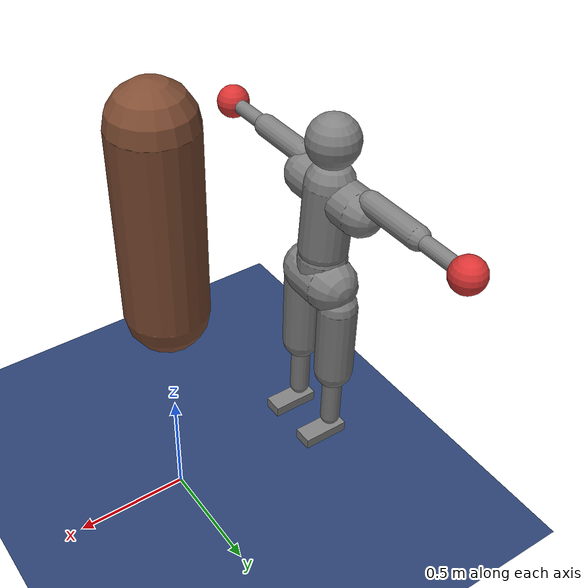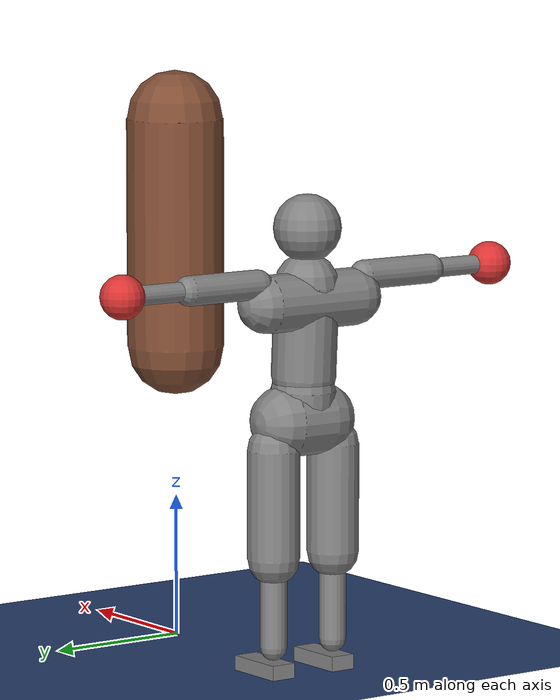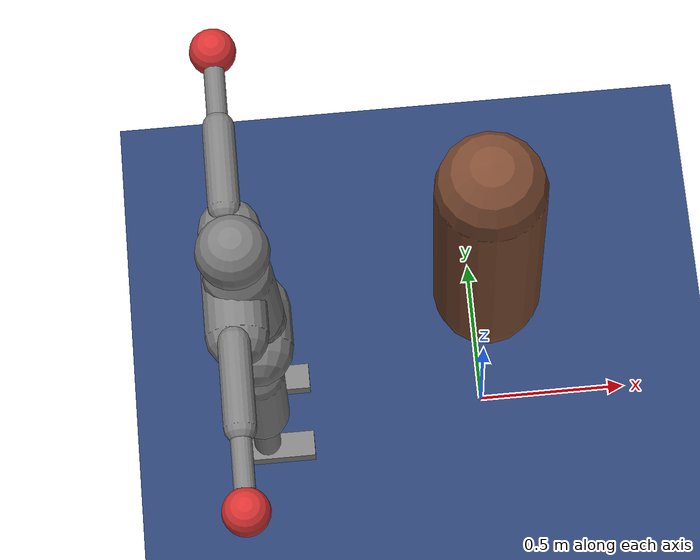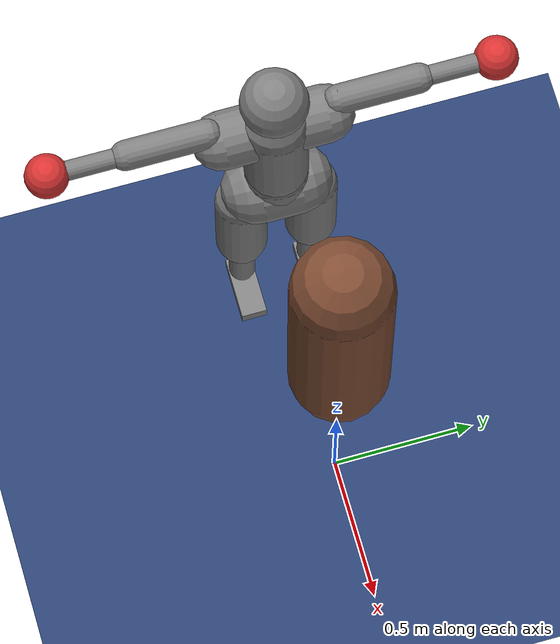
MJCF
<mujoco model="lilmatt_bag">
  <compiler angle="degree" inertiafromgeom="true" autolimits="true"/>
  <option timestep="0.005" iterations="10" ls_iterations="10" integrator="implicitfast">
    <flag eulerdamp="disable"/>
  </option>
  <default>
    <geom contype="1" conaffinity="1" condim="3" friction="1.0 0.005 0.0001" density="1000" margin="0"/>
    <joint limited="true"/>
    <position ctrllimited="true"/>
  </default>
  <asset>
    <texture name="grid" type="2d" builtin="checker" rgb1=".18 .28 .48" rgb2=".14 .22 .40" width="300" height="300"/>
    <material name="grid" texture="grid" texrepeat="6 6" reflectance="0"/>
  </asset>
  <worldbody>
    <light pos="0 0 5" dir="0 0 -1" directional="true"/>
    <geom name="floor" type="plane" size="0 0 0.05" material="grid" friction="1.0 0.005 0.0001"/>

    <body name="a_pelvis" pos="-0.7500 0.0000 0.8672" quat="1.00000 0 0 0.00000">
      <freejoint name="a_root"/>
      <geom name="a_pelvis_geom" type="capsule" fromto="0.0000 -0.0700 0.0000 0.0000 0.0700 0.0000" size="0.1228" mass="6.8132" />
      <geom name="a_pelvis_up" type="capsule" fromto="0.0000 0.0000 0.0000 -0.0066 0.0000 0.1058" size="0.1105" mass="4.6036" />
      <body name="a_torso" pos="-0.0066 0.0000 0.1258">
        <joint name="a_abdomen_z" type="hinge" axis="0 0 1" range="-45 45" damping="0.5" armature="0.08" stiffness="0"/>
        <joint name="a_abdomen_y" type="hinge" axis="0 1 0" range="-60 30" damping="0.5" armature="0.08" stiffness="0"/>
        <joint name="a_abdomen_x" type="hinge" axis="1 0 0" range="-35 35" damping="0.5" armature="0.08" stiffness="0"/>
        <geom name="a_torso_geom" type="capsule" fromto="0.0000 0.0000 0.0200 -0.0181 0.0000 0.3354" size="0.1100" mass="28.5420" />
        <geom name="a_chest_geom" type="capsule" fromto="-0.0347 -0.1786 0.2850 -0.0347 0.1786 0.2850" size="0.0990" mass="0.5"/>
        <geom name="a_head_geom" type="sphere" pos="-0.0217 0.0000 0.5289" size="0.1155" mass="6.5124" />
        <body name="a_upper_arm_l" pos="-0.0434 0.2232 0.3563">
          <joint name="a_shoulder_x_l" type="hinge" axis="1 0 0" range="-170 30" damping="0.5" armature="0.03" stiffness="0"/>
          <joint name="a_shoulder_z_l" type="hinge" axis="0 0 1" range="-110 110" damping="0.5" armature="0.03" stiffness="0"/>
          <geom name="a_upper_arm_l_geom" type="capsule" fromto="0.0000 0.0000 0.0000 0.0000 0.2758 0.0000" size="0.0508" mass="2.2512" />
          <body name="a_forearm_l" pos="0.0000 0.2758 0.0000">
            <joint name="a_elbow_l" type="hinge" axis="0 0 1" range="-150 0" damping="0.5" armature="0.02" stiffness="0"/>
            <geom name="a_forearm_l_geom" type="capsule" fromto="0.0000 0.0000 0.0000 0.0000 0.1970 0.0000" size="0.0332" mass="1.2864" />
            <geom name="a_glove_l" type="sphere" pos="0.0000 0.2645 0.0000" size="0.0750" mass="0.7654" rgba="0.85 0.2 0.2 1"/>
          </body>
        </body>
        <body name="a_upper_arm_r" pos="-0.0434 -0.2232 0.3563">
          <joint name="a_shoulder_x_r" type="hinge" axis="1 0 0" range="-30 170" damping="0.5" armature="0.03" stiffness="0"/>
          <joint name="a_shoulder_z_r" type="hinge" axis="0 0 1" range="-110 110" damping="0.5" armature="0.03" stiffness="0"/>
          <geom name="a_upper_arm_r_geom" type="capsule" fromto="0.0000 0.0000 0.0000 0.0000 -0.2758 0.0000" size="0.0508" mass="2.2512" />
          <body name="a_forearm_r" pos="0.0000 -0.2758 0.0000">
            <joint name="a_elbow_r" type="hinge" axis="0 0 1" range="0 150" damping="0.5" armature="0.02" stiffness="0"/>
            <geom name="a_forearm_r_geom" type="capsule" fromto="0.0000 0.0000 0.0000 0.0000 -0.1970 0.0000" size="0.0332" mass="1.2864" />
            <geom name="a_glove_r" type="sphere" pos="0.0000 -0.2645 0.0000" size="0.0750" mass="0.7654" rgba="0.85 0.2 0.2 1"/>
          </body>
        </body>
      </body>
      <body name="a_thigh_l" pos="-0.0061 0.1244 -0.0919">
        <joint name="a_hip_x_l" type="hinge" axis="1 0 0" range="-40 40" damping="0.5" armature="0.1" stiffness="0"/>
        <joint name="a_hip_z_l" type="hinge" axis="0 0 1" range="-35 35" damping="0.5" armature="0.1" stiffness="0"/>
        <joint name="a_hip_y_l" type="hinge" axis="0 1 0" range="-120 30" damping="0.5" armature="0.1" stiffness="0"/>
        <geom name="a_thigh_l_geom" type="capsule" fromto="0.0000 0.0000 0.0000 0.0000 0.0000 -0.3718" size="0.0895" mass="8.0400" />
        <body name="a_shin_l" pos="0.0000 0.0000 -0.3718">
          <joint name="a_knee_l" type="hinge" axis="0 1 0" range="0 150" damping="0.5" armature="0.1" stiffness="0"/>
          <geom name="a_shin_l_geom" type="capsule" fromto="0.0000 0.0000 0.0000 0.0000 0.0000 -0.3036" size="0.0462" mass="3.7386" />
          <body name="a_foot_l" pos="0.0000 0.0000 -0.3036">
            <joint name="a_ankle_y_l" type="hinge" axis="0 1 0" range="-20 50" damping="0.5" armature="0.03" stiffness="0"/>
            <joint name="a_ankle_x_l" type="hinge" axis="1 0 0" range="-25 25" damping="0.5" armature="0.03" stiffness="0"/>
            <geom name="a_foot_l_geom" type="box" pos="0.0506 0.0000 -0.0797" size="0.1100 0.0450 0.0280" mass="1.1658" friction="1.0 0.005 0.0001"/>
            <site name="a_foot_l_site" pos="0.0506 0.0000 -0.0797" size="0.01"/>
          </body>
        </body>
      </body>
      <body name="a_thigh_r" pos="-0.0061 -0.1244 -0.0919">
        <joint name="a_hip_x_r" type="hinge" axis="1 0 0" range="-40 40" damping="0.5" armature="0.1" stiffness="0"/>
        <joint name="a_hip_z_r" type="hinge" axis="0 0 1" range="-35 35" damping="0.5" armature="0.1" stiffness="0"/>
        <joint name="a_hip_y_r" type="hinge" axis="0 1 0" range="-120 30" damping="0.5" armature="0.1" stiffness="0"/>
        <geom name="a_thigh_r_geom" type="capsule" fromto="0.0000 0.0000 0.0000 0.0000 0.0000 -0.3718" size="0.0895" mass="8.0400" />
        <body name="a_shin_r" pos="0.0000 0.0000 -0.3718">
          <joint name="a_knee_r" type="hinge" axis="0 1 0" range="0 150" damping="0.5" armature="0.1" stiffness="0"/>
          <geom name="a_shin_r_geom" type="capsule" fromto="0.0000 0.0000 0.0000 0.0000 0.0000 -0.3036" size="0.0462" mass="3.7386" />
          <body name="a_foot_r" pos="0.0000 0.0000 -0.3036">
            <joint name="a_ankle_y_r" type="hinge" axis="0 1 0" range="-20 50" damping="0.5" armature="0.03" stiffness="0"/>
            <joint name="a_ankle_x_r" type="hinge" axis="1 0 0" range="-25 25" damping="0.5" armature="0.03" stiffness="0"/>
            <geom name="a_foot_r_geom" type="box" pos="0.0506 0.0000 -0.0797" size="0.1100 0.0450 0.0280" mass="1.1658" friction="1.0 0.005 0.0001"/>
            <site name="a_foot_r_site" pos="0.0506 0.0000 -0.0797" size="0.01"/>
          </body>
        </body>
      </body>
    </body>
    <body name="bag" pos="0 0 2.45">
      <joint name="bag_swing" type="ball" damping="6"/>
      <geom name="bag_geom" type="capsule" fromto="0 0 -0.62 0 0 -1.42" size="0.17" mass="35" rgba="0.5 0.3 0.2 1"/>
      <site name="bag_head" pos="0 0 -0.82" size="0.02"/>
      <site name="bag_body" pos="0 0 -1.22" size="0.02"/>
    </body>
  </worldbody>
  <contact>
    <exclude body1="a_pelvis" body2="a_torso"/>
    <exclude body1="a_pelvis" body2="a_thigh_l"/>
    <exclude body1="a_thigh_l" body2="a_shin_l"/>
    <exclude body1="a_shin_l" body2="a_foot_l"/>
    <exclude body1="a_torso" body2="a_upper_arm_l"/>
    <exclude body1="a_upper_arm_l" body2="a_forearm_l"/>
    <exclude body1="a_pelvis" body2="a_thigh_r"/>
    <exclude body1="a_thigh_r" body2="a_shin_r"/>
    <exclude body1="a_shin_r" body2="a_foot_r"/>
    <exclude body1="a_torso" body2="a_upper_arm_r"/>
    <exclude body1="a_upper_arm_r" body2="a_forearm_r"/>
  </contact>
  <actuator>
    <position name="a_abdomen_z" joint="a_abdomen_z" kp="368.1" kv="17.178" forcerange="-139.06 139.06" ctrlrange="-0.7854 0.7854"/>
    <position name="a_abdomen_y" joint="a_abdomen_y" kp="368.1" kv="17.178" forcerange="-139.06 139.06" ctrlrange="-1.0472 0.5236"/>
    <position name="a_abdomen_x" joint="a_abdomen_x" kp="368.1" kv="17.178" forcerange="-139.06 139.06" ctrlrange="-0.6109 0.6109"/>
    <position name="a_shoulder_x_l" joint="a_shoulder_x_l" kp="130.88" kv="6.544" forcerange="-81.8 81.8" ctrlrange="-2.9671 0.5236"/>
    <position name="a_shoulder_z_l" joint="a_shoulder_z_l" kp="130.88" kv="6.544" forcerange="-81.8 81.8" ctrlrange="-1.9199 1.9199"/>
    <position name="a_elbow_l" joint="a_elbow_l" kp="89.98" kv="4.499" forcerange="-57.26 57.26" ctrlrange="-2.6180 0.0000"/>
    <position name="a_shoulder_x_r" joint="a_shoulder_x_r" kp="130.88" kv="6.544" forcerange="-81.8 81.8" ctrlrange="-0.5236 2.9671"/>
    <position name="a_shoulder_z_r" joint="a_shoulder_z_r" kp="130.88" kv="6.544" forcerange="-81.8 81.8" ctrlrange="-1.9199 1.9199"/>
    <position name="a_elbow_r" joint="a_elbow_r" kp="89.98" kv="4.499" forcerange="-57.26 57.26" ctrlrange="0.0000 2.6180"/>
    <position name="a_hip_x_l" joint="a_hip_x_l" kp="490.8" kv="24.54" forcerange="-196.32 196.32" ctrlrange="-0.6981 0.6981"/>
    <position name="a_hip_z_l" joint="a_hip_z_l" kp="490.8" kv="24.54" forcerange="-196.32 196.32" ctrlrange="-0.6109 0.6109"/>
    <position name="a_hip_y_l" joint="a_hip_y_l" kp="490.8" kv="24.54" forcerange="-196.32 196.32" ctrlrange="-2.0944 0.5236"/>
    <position name="a_knee_l" joint="a_knee_l" kp="490.8" kv="24.54" forcerange="-212.68 212.68" ctrlrange="0.0000 2.6180"/>
    <position name="a_ankle_y_l" joint="a_ankle_y_l" kp="613.5" kv="24.54" forcerange="-179.96 179.96" ctrlrange="-0.3491 0.8727"/>
    <position name="a_ankle_x_l" joint="a_ankle_x_l" kp="65.44" kv="3.272" forcerange="-49.08 49.08" ctrlrange="-0.4363 0.4363"/>
    <position name="a_hip_x_r" joint="a_hip_x_r" kp="490.8" kv="24.54" forcerange="-196.32 196.32" ctrlrange="-0.6981 0.6981"/>
    <position name="a_hip_z_r" joint="a_hip_z_r" kp="490.8" kv="24.54" forcerange="-196.32 196.32" ctrlrange="-0.6109 0.6109"/>
    <position name="a_hip_y_r" joint="a_hip_y_r" kp="490.8" kv="24.54" forcerange="-196.32 196.32" ctrlrange="-2.0944 0.5236"/>
    <position name="a_knee_r" joint="a_knee_r" kp="490.8" kv="24.54" forcerange="-212.68 212.68" ctrlrange="0.0000 2.6180"/>
    <position name="a_ankle_y_r" joint="a_ankle_y_r" kp="613.5" kv="24.54" forcerange="-179.96 179.96" ctrlrange="-0.3491 0.8727"/>
    <position name="a_ankle_x_r" joint="a_ankle_x_r" kp="65.44" kv="3.272" forcerange="-49.08 49.08" ctrlrange="-0.4363 0.4363"/>
  </actuator>
  <keyframe>
    <key name="stand" qpos="-0.7500 0.0000 0.8593 1.00000 0 0 0.00000 0.0000 0.0000 0.0000 -1.3265 -0.7330 -1.9548 1.3265 0.7330 1.9548 0.0000 0.0000 -0.1622 0.4538 -0.2916 0.0000 0.0000 0.0000 -0.1622 0.4538 -0.2916 0.0000 1 0 0 0"/>
  </keyframe>
</mujoco>
